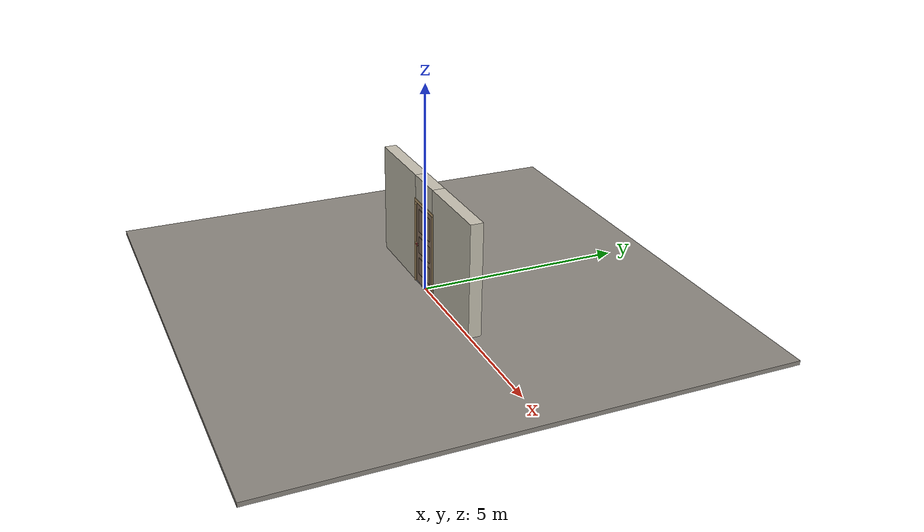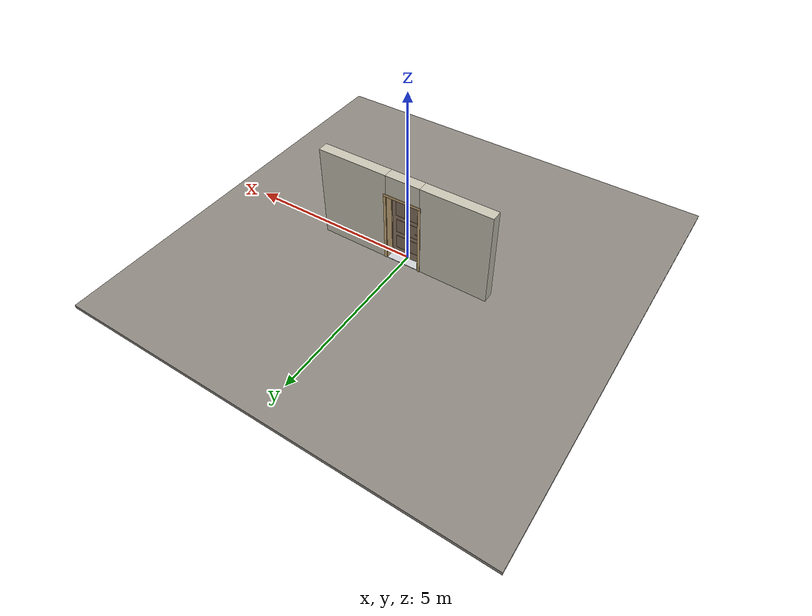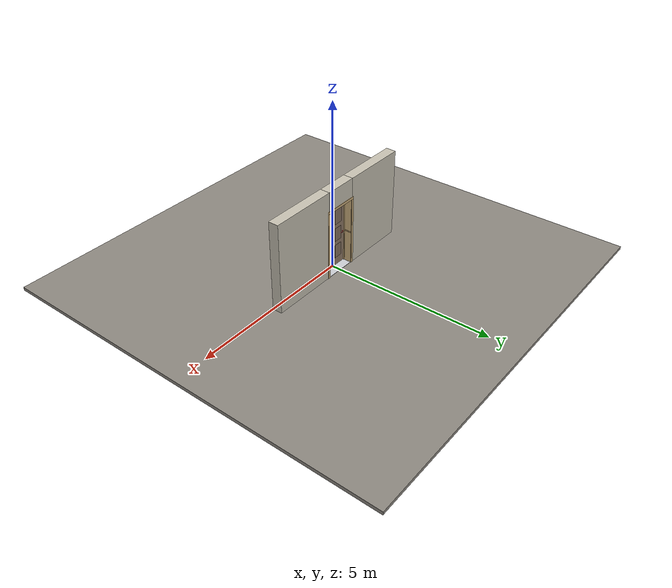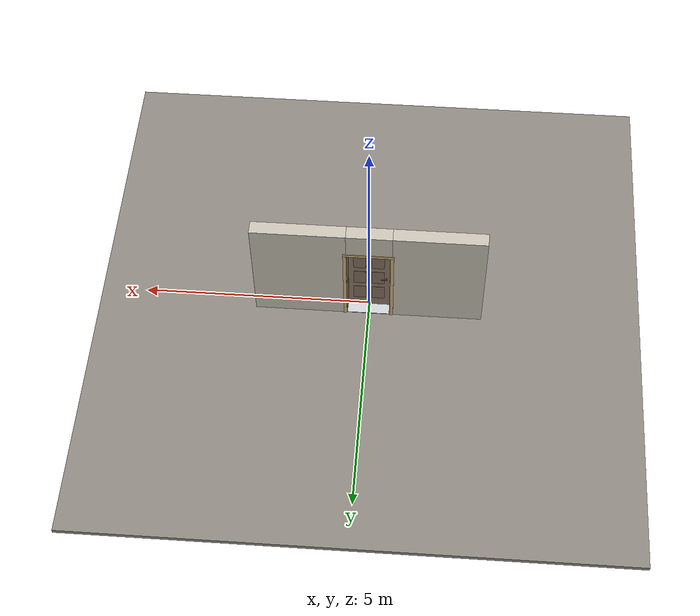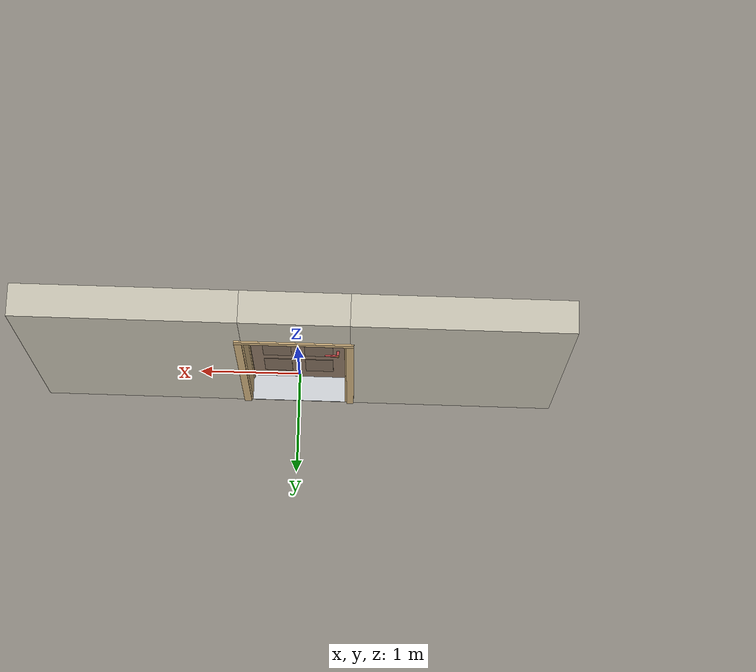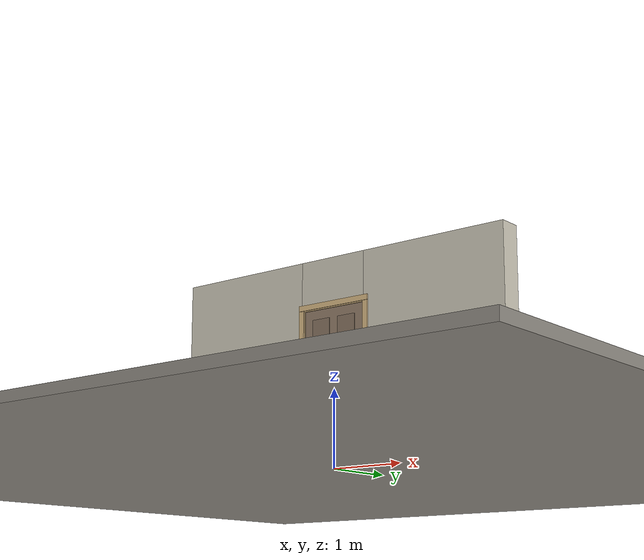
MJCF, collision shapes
<?xml version="1.0" ?>
<mujoco model="db0635_swing_single_full">
  <compiler angle="radian" meshdir="../../hardware" texturedir="../../textures" autolimits="true" inertiafromgeom="false"/>
  <option timestep="0.002" integrator="implicitfast" cone="elliptic" impratio="10" noslip_iterations="3">
    <flag multiccd="enable"/>
  </option>
  <size memory="16M"/>
  <default>
    <geom condim="4" solref="0.005 1" solimp="0.95 0.99 0.001"/>
    <joint solreflimit="0.005 1" solimplimit="0.95 0.99 0.001"/>
    <tendon solreflimit="0.005 1"/>
    <equality solref="0.002 1"/>
  </default>
  <visual>
    <headlight ambient="0.4 0.4 0.4" diffuse="0.7 0.7 0.7" specular="0.2 0.2 0.2"/>
    <quality shadowsize="4096"/>
    <map znear="0.01" zfar="60"/>
  </visual>
  <asset>
    <mesh name="hinge_2af0f4d6ca" file="hinge_2af0f4d6ca.obj"/>
    <mesh name="hinge_jamb_c0c0a62ada" file="hinge_jamb_c0c0a62ada.obj"/>
    <mesh name="lever_9f02b544cf" file="lever_9f02b544cf.obj"/>
    <mesh name="peephole_f829311a59" file="peephole_f829311a59.obj"/>
    <material name="mat_floor" rgba="0.55 0.53 0.5 1" specular="0.2" shininess="0.15" reflectance="0"/>
    <material name="mat_wall" rgba="0.78 0.76 0.7 1" specular="0.2" shininess="0.1" reflectance="0"/>
    <material name="mat_leaf" rgba="0.56 0.475 0.4 1" specular="0.2" shininess="0.5" reflectance="0"/>
    <material name="mat_leaf_panel" rgba="0.515 0.437 0.368 1" specular="0.2" shininess="0.5" reflectance="0"/>
    <material name="mat_hinge" rgba="0.65 0.66 0.68 1" specular="0.74" shininess="0.5" reflectance="0.36"/>
    <material name="mat_op_nickel_satin" rgba="0.72 0.7 0.66 1" specular="0.8" shininess="0.65" reflectance="0.4"/>
    <material name="mat_trim" rgba="0.85 0.66 0.3 1" specular="0.8" shininess="0.75" reflectance="0.4"/>
    <material name="mat_keyway" rgba="0.05 0.05 0.05 1" specular="0.2" shininess="0.5" reflectance="0"/>
    <material name="mat_bolt" rgba="0.85 0.66 0.3 1" specular="0.8" shininess="0.75" reflectance="0.4"/>
    <material name="mat_frame" rgba="0.82 0.7 0.5 1" specular="0.2" shininess="0.45" reflectance="0"/>
    <material name="mat_seal" rgba="0.1 0.1 0.1 1" specular="0.2" shininess="0.1" reflectance="0"/>
    <material name="mat_threshold" rgba="0.8 0.81 0.83 1" specular="0.8" shininess="0.6" reflectance="0.4"/>
    <material name="mat_peephole" rgba="0.85 0.66 0.3 1" specular="0.8" shininess="0.75" reflectance="0.4"/>
    <texture name="skybox" type="skybox" builtin="gradient" rgb1="0.6 0.7 0.85" rgb2="0.9 0.92 0.95" width="256" height="256"/>
  </asset>
  <worldbody>
    <light name="sun" pos="1.5 -2.5 4" dir="-0.3 0.5 -0.8" directional="true" diffuse="0.8 0.8 0.8" specular="0.3 0.3 0.3" castshadow="true"/>
    <light name="fill" pos="-1.5 2.5 3" dir="0.3 -0.5 -0.7" directional="true" diffuse="0.35 0.35 0.4" castshadow="false"/>
    <camera name="robot_view" pos="0 -2.421187 1.734312" xyaxes="1 0 0 0 0.26963 0.962964" fovy="52"/>
    <camera name="far_view" pos="0 2.663187 1.734312" xyaxes="-1 0 0 0 -0.26963 0.962964" fovy="52"/>
    <camera name="iso" pos="-1.932062 -2.014438 2.141063" xyaxes="0.741536 -0.670913 0 0.242917 0.268487 0.932151" fovy="46"/>
    <camera name="detail_handle" pos="-0.1065 -0.877 1.296" xyaxes="0.97561 0.219512 0 -0.070934 0.315262 0.94635" fovy="38"/>
    <geom name="floor" type="box" size="6 6 0.05" pos="0 0 -0.05" material="mat_floor" group="0" contype="1" conaffinity="1" friction="0.8 0.005 0.0001" density="2400"/>
    <geom name="wall_left" type="box" size="0.99525 0.15 1.35" pos="-1.50475 0.121 1.35" material="mat_wall" group="0" contype="1" conaffinity="1" friction="0.6 0.005 0.0001" density="800"/>
    <geom name="wall_right" type="box" size="1.01025 0.15 1.35" pos="1.48975 0.121 1.35" material="mat_wall" group="0" contype="1" conaffinity="1" friction="0.6 0.005 0.0001" density="800"/>
    <geom name="wall_header" type="box" size="0.4945 0.15 0.303" pos="-0.015 0.121 2.397" material="mat_wall" group="0" contype="1" conaffinity="1" friction="0.6 0.005 0.0001" density="800"/>
    <geom name="hinge_0_jamb" type="mesh" mesh="hinge_jamb_c0c0a62ada" pos="0.4575 -0.029 0.267" quat="0 0 1 0" material="mat_hinge" group="1" contype="0" conaffinity="0" density="7850"/>
    <geom name="hinge_1_jamb" type="mesh" mesh="hinge_jamb_c0c0a62ada" pos="0.4575 -0.029 1.029" quat="0 0 1 0" material="mat_hinge" group="1" contype="0" conaffinity="0" density="7850"/>
    <geom name="hinge_2_jamb" type="mesh" mesh="hinge_jamb_c0c0a62ada" pos="0.4575 -0.029 1.861" quat="0 0 1 0" material="mat_hinge" group="1" contype="0" conaffinity="0" density="7850"/>
    <geom name="jamb_hinge" type="box" size="0.0095 0.15 1.0225" pos="0.47 0.121 1.0225" material="mat_frame" group="0" contype="1" conaffinity="1" friction="0.6 0.005 0.0001" density="400"/>
    <geom name="strike_1016_wall_n" type="box" size="0.0245 0.131575 0.0167" pos="-0.485 0.139425 1.016" material="mat_frame" group="0" contype="1" conaffinity="1" friction="0.6 0.005 0.0001" density="400"/>
    <geom name="strike_1016_wall_p" type="box" size="0.0245 0.008 0.0167" pos="-0.485 -0.01585 1.016" material="mat_frame" group="0" contype="1" conaffinity="1" friction="0.6 0.005 0.0001" density="400"/>
    <geom name="strike_1016_ramp" type="box" size="0.0245 0.01649 0.0167" pos="-0.489636 -0.028673 1.016" quat="0.977148 0 0 -0.212558" material="mat_frame" group="0" contype="1" conaffinity="1" friction="0.12 0.005 0.0001" density="400"/>
    <geom name="strike_1016_back" type="box" size="0.01615 0.00785 0.0167" pos="-0.49335 0 1.016" material="mat_frame" group="0" contype="1" conaffinity="1" friction="0.6 0.005 0.0001" density="400"/>
    <geom name="jamb_strike_0" type="box" size="0.0245 0.15 0.49965" pos="-0.485 0.121 0.49965" material="mat_frame" group="0" contype="1" conaffinity="1" friction="0.6 0.005 0.0001" density="400"/>
    <geom name="jamb_strike_1" type="box" size="0.0245 0.15 0.50615" pos="-0.485 0.121 1.53885" material="mat_frame" group="0" contype="1" conaffinity="1" friction="0.6 0.005 0.0001" density="400"/>
    <geom name="jamb_head" type="box" size="0.4945 0.15 0.0095" pos="-0.015 0.121 2.0545" material="mat_frame" group="0" contype="1" conaffinity="1" friction="0.6 0.005 0.0001" density="400"/>
    <geom name="head_stud" type="box" size="0.4945 0.15 0.015" pos="-0.015 0.121 2.079" material="mat_wall" group="0" contype="1" conaffinity="1" friction="0.6 0.005 0.0001" density="500"/>
    <geom name="stop_hinge" type="box" size="0.0055 0.016 1.0225" pos="0.455 0.0385 1.0225" material="mat_frame" group="0" contype="1" conaffinity="1" friction="0.6 0.005 0.0001" density="400"/>
    <geom name="stop_strike" type="box" size="0.0055 0.016 1.0225" pos="-0.455 0.0385 1.0225" material="mat_frame" group="0" contype="1" conaffinity="1" friction="0.6 0.005 0.0001" density="400"/>
    <geom name="stop_head" type="box" size="0.4605 0.016 0.0055" pos="0 0.0385 2.0395" material="mat_frame" group="0" contype="1" conaffinity="1" friction="0.6 0.005 0.0001" density="400"/>
    <geom name="seal_hinge" type="box" size="0.004 0.003 1.0225" pos="0.4575 0.025 1.0225" material="mat_seal" group="1" contype="0" conaffinity="0" density="1100"/>
    <geom name="seal_strike" type="box" size="0.004 0.003 1.0225" pos="-0.4575 0.025 1.0225" material="mat_seal" group="1" contype="0" conaffinity="0" density="1100"/>
    <geom name="seal_head" type="box" size="0.4405 0.003 0.008" pos="0 0.025 2.033" material="mat_seal" group="1" contype="0" conaffinity="0" density="1100"/>
    <geom name="casing_l_n" type="box" size="0.035 0.008 1.032" pos="-0.5095 -0.037 1.0225" material="mat_frame" group="2" contype="0" conaffinity="0" density="400"/>
    <geom name="casing_r_n" type="box" size="0.035 0.008 1.032" pos="0.5095 -0.037 1.0225" material="mat_frame" group="2" contype="0" conaffinity="0" density="400"/>
    <geom name="casing_h_n" type="box" size="0.5445 0.008 0.035" pos="0 -0.037 2.094" material="mat_frame" group="2" contype="0" conaffinity="0" density="400"/>
    <geom name="casing_l_p" type="box" size="0.035 0.008 1.032" pos="-0.5095 0.279 1.0225" material="mat_frame" group="2" contype="0" conaffinity="0" density="400"/>
    <geom name="casing_r_p" type="box" size="0.035 0.008 1.032" pos="0.5095 0.279 1.0225" material="mat_frame" group="2" contype="0" conaffinity="0" density="400"/>
    <geom name="casing_h_p" type="box" size="0.5445 0.008 0.035" pos="0 0.279 2.094" material="mat_frame" group="2" contype="0" conaffinity="0" density="400"/>
    <geom name="threshold" type="box" size="0.4795 0.15 0.0065" pos="0 0.121 0.0065" material="mat_threshold" group="0" contype="1" conaffinity="1" friction="0.5 0.005 0.0001" density="2700"/>
    <site name="approach_point" pos="0 -1.5 0" quat="1 0 0 0" size="0.05" rgba="0.2 0.9 0.2 0.5" group="4"/>
    <site name="goal_point" pos="0 1.5 0" quat="1 0 0 0" size="0.05" rgba="0.2 0.9 0.2 0.5" group="4"/>
    <site name="door_plane_center" pos="0 0 1.0225" quat="1 0 0 0" size="0.02" rgba="0.2 0.9 0.2 0.5" group="4"/>
    <body name="leaf" pos="0.4605 0 0">
      <inertial pos="-0.456439 -0.000134 1.029365" mass="58.075937" quat="0.500126 -0.499716 0.500273 0.499885" diaginertia="4.117211712 19.867018256 23.965158092"/>
      <joint name="leaf_hinge" type="hinge" axis="0 0 1" pos="-0.003 -0.029 0" limited="true" range="0 1.919862" solreflimit="0.02 1" damping="0.30611" frictionloss="3.592845" armature="0.02"/>
      <geom name="leaf_slab" type="box" size="0.457 0.022 1.012" pos="-0.46 0 1.029" material="mat_leaf" group="0" contype="1" conaffinity="1" friction="0.4 0.005 0.0001" density="1"/>
      <geom name="leaf_panel_0_n" type="box" size="0.13573 0.003 0.208024" pos="-0.25927 -0.025 0.467664" material="mat_leaf_panel" group="1" contype="0" conaffinity="0" density="1"/>
      <geom name="leaf_panel_0_p" type="box" size="0.13573 0.003 0.208024" pos="-0.25927 0.025 0.467664" material="mat_leaf_panel" group="1" contype="0" conaffinity="0" density="1"/>
      <geom name="leaf_panel_1_n" type="box" size="0.13573 0.003 0.208024" pos="-0.66073 -0.025 0.467664" material="mat_leaf_panel" group="1" contype="0" conaffinity="0" density="1"/>
      <geom name="leaf_panel_1_p" type="box" size="0.13573 0.003 0.208024" pos="-0.66073 0.025 0.467664" material="mat_leaf_panel" group="1" contype="0" conaffinity="0" density="1"/>
      <geom name="leaf_panel_2_n" type="box" size="0.13573 0.003 0.208024" pos="-0.25927 -0.025 1.013712" material="mat_leaf_panel" group="1" contype="0" conaffinity="0" density="1"/>
      <geom name="leaf_panel_2_p" type="box" size="0.13573 0.003 0.208024" pos="-0.25927 0.025 1.013712" material="mat_leaf_panel" group="1" contype="0" conaffinity="0" density="1"/>
      <geom name="leaf_panel_3_n" type="box" size="0.13573 0.003 0.208024" pos="-0.66073 -0.025 1.013712" material="mat_leaf_panel" group="1" contype="0" conaffinity="0" density="1"/>
      <geom name="leaf_panel_3_p" type="box" size="0.13573 0.003 0.208024" pos="-0.66073 0.025 1.013712" material="mat_leaf_panel" group="1" contype="0" conaffinity="0" density="1"/>
      <geom name="leaf_panel_4_n" type="box" size="0.13573 0.003 0.284032" pos="-0.25927 -0.025 1.635768" material="mat_leaf_panel" group="1" contype="0" conaffinity="0" density="1"/>
      <geom name="leaf_panel_4_p" type="box" size="0.13573 0.003 0.284032" pos="-0.25927 0.025 1.635768" material="mat_leaf_panel" group="1" contype="0" conaffinity="0" density="1"/>
      <geom name="leaf_panel_5_n" type="box" size="0.13573 0.003 0.284032" pos="-0.66073 -0.025 1.635768" material="mat_leaf_panel" group="1" contype="0" conaffinity="0" density="1"/>
      <geom name="leaf_panel_5_p" type="box" size="0.13573 0.003 0.284032" pos="-0.66073 0.025 1.635768" material="mat_leaf_panel" group="1" contype="0" conaffinity="0" density="1"/>
      <geom name="hinge_0" type="mesh" mesh="hinge_2af0f4d6ca" pos="-0.003 -0.029 0.267" quat="0 0 1 0" material="mat_hinge" group="1" contype="0" conaffinity="0" density="7850"/>
      <geom name="hinge_1" type="mesh" mesh="hinge_2af0f4d6ca" pos="-0.003 -0.029 1.029" quat="0 0 1 0" material="mat_hinge" group="1" contype="0" conaffinity="0" density="7850"/>
      <geom name="hinge_2" type="mesh" mesh="hinge_2af0f4d6ca" pos="-0.003 -0.029 1.861" quat="0 0 1 0" material="mat_hinge" group="1" contype="0" conaffinity="0" density="7850"/>
      <geom name="leaf_latch_bolt_faceplate" type="box" size="0.0006 0.01235 0.0267" pos="-0.9164 0 1.016" material="mat_bolt" group="1" contype="0" conaffinity="0" density="8500"/>
      <geom name="peephole" type="mesh" mesh="peephole_f829311a59" pos="-0.46 -0.022 1.517" quat="0 0 -0.707107 0.707107" material="mat_peephole" group="2" contype="0" conaffinity="0" density="8500"/>
      <site name="leaf_edge_mid" pos="-0.917 0 1.012" quat="1 0 0 0" size="0.02" rgba="0.2 0.9 0.2 0.5" group="4"/>
      <body name="leaf_handle" pos="-0.847 0 1.016">
        <inertial pos="0.027758 0.000956 0" mass="1.005882" quat="0.71178 0 0 -0.702403" diaginertia="0.001794484 0.003806886 0.005422316"/>
        <joint name="leaf_handle_hinge" type="hinge" axis="0 1 0" limited="true" range="0 0.96" damping="0.245633" frictionloss="0.048" stiffness="1.2" springref="-0.458333" armature="0.01"/>
        <geom name="leaf_handle_spindle" type="cylinder" size="0.006 0.03" pos="0 0 0" quat="0.707107 -0.707107 0 0" material="mat_op_nickel_satin" group="1" contype="0" conaffinity="0" density="7850"/>
        <geom name="leaf_handle_lever_n" type="mesh" mesh="lever_9f02b544cf" pos="0 -0.022 0" quat="0 0 -0.707107 0.707107" material="mat_op_nickel_satin" group="1" contype="0" conaffinity="0" density="3000"/>
        <geom name="leaf_handle_lever_col_n" type="capsule" size="0.0095 0.053" pos="0.0625 -0.077 0" quat="0.707107 0 0.707107 0" material="mat_op_nickel_satin" group="3" contype="1" conaffinity="1" rgba="0.8 0.3 0.3 0.25" friction="0.7 0.01 0.0001" density="3000"/>
        <geom name="leaf_handle_hub_col_n" type="cylinder" size="0.012 0.022" pos="0 -0.052 0" quat="0.707107 -0.707107 0 0" material="mat_op_nickel_satin" group="3" contype="1" conaffinity="1" rgba="0.8 0.3 0.3 0.25" friction="0.6 0.005 0.0001" density="3000"/>
        <geom name="leaf_handle_turn_button_n" type="cylinder" size="0.006 0.005" pos="0 -0.0875 0" quat="0.707107 -0.707107 0 0" material="mat_trim" group="1" contype="0" conaffinity="0" density="7100"/>
        <geom name="leaf_handle_lever_p" type="mesh" mesh="lever_9f02b544cf" pos="0 0.022 0" quat="0 0 0.707107 0.707107" material="mat_op_nickel_satin" group="1" contype="0" conaffinity="0" density="3000"/>
        <geom name="leaf_handle_lever_col_p" type="capsule" size="0.0095 0.053" pos="0.0625 0.077 0" quat="0.707107 0 0.707107 0" material="mat_op_nickel_satin" group="3" contype="1" conaffinity="1" rgba="0.8 0.3 0.3 0.25" friction="0.7 0.01 0.0001" density="3000"/>
        <geom name="leaf_handle_hub_col_p" type="cylinder" size="0.012 0.022" pos="0 0.052 0" quat="0.707107 -0.707107 0 0" material="mat_op_nickel_satin" group="3" contype="1" conaffinity="1" rgba="0.8 0.3 0.3 0.25" friction="0.6 0.005 0.0001" density="3000"/>
        <geom name="leaf_handle_cylinder_p" type="cylinder" size="0.0085 0.006" pos="0 0.0845 0" quat="0.707107 -0.707107 0 0" material="mat_trim" group="1" contype="0" conaffinity="0" density="7100"/>
        <geom name="leaf_handle_keyway_p" type="box" size="0.0012 0.0008 0.006" pos="0 0.091 0" material="mat_keyway" group="1" contype="0" conaffinity="0" density="7100"/>
        <site name="leaf_handle_grip_n" pos="0.1 -0.077 0" quat="1 0 0 0" size="0.012" rgba="0.2 0.9 0.2 0.5" group="4"/>
        <site name="leaf_handle_grip_p" pos="0.1 0.077 0" quat="1 0 0 0" size="0.012" rgba="0.2 0.9 0.2 0.5" group="4"/>
      </body>
      <body name="leaf_latch_bolt" pos="-0.917 0 1.016">
        <inertial pos="0.00865 0 0" mass="0.041419" quat="0.92388 0.382683 0 0" diaginertia="0.000000798 0.000005598 0.000005598"/>
        <joint name="leaf_latch_bolt_slide" type="slide" axis="1 0 0" limited="true" range="0 0.0127" damping="2" frictionloss="0.3" stiffness="300" springref="-0.008333" armature="0.1"/>
        <geom name="leaf_latch_bolt_capsule" type="capsule" size="0.00635 0.015" pos="0.00865 0 0" quat="0.707107 0 -0.707107 0" material="mat_bolt" group="0" contype="1" conaffinity="1" friction="0.2 0.005 0.0001" density="8500"/>
      </body>
    </body>
  </worldbody>
  <tendon>
    <fixed name="leaf_latch_bolt_coupling" limited="true" range="0 10">
      <joint joint="leaf_latch_bolt_slide" coef="1"/>
      <joint joint="leaf_handle_hinge" coef="-0.013956"/>
    </fixed>
  </tendon>
  <sensor>
    <jointpos name="leaf_hinge_pos" joint="leaf_hinge"/>
    <jointvel name="leaf_hinge_vel" joint="leaf_hinge"/>
    <jointpos name="leaf_handle_hinge_pos" joint="leaf_handle_hinge"/>
    <jointvel name="leaf_handle_hinge_vel" joint="leaf_handle_hinge"/>
    <jointpos name="leaf_latch_bolt_slide_pos" joint="leaf_latch_bolt_slide"/>
    <jointvel name="leaf_latch_bolt_slide_vel" joint="leaf_latch_bolt_slide"/>
  </sensor>
</mujoco>
